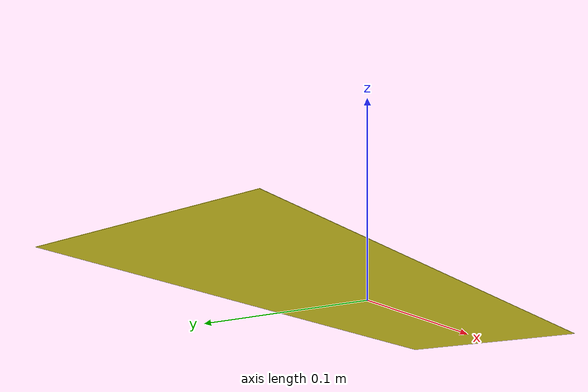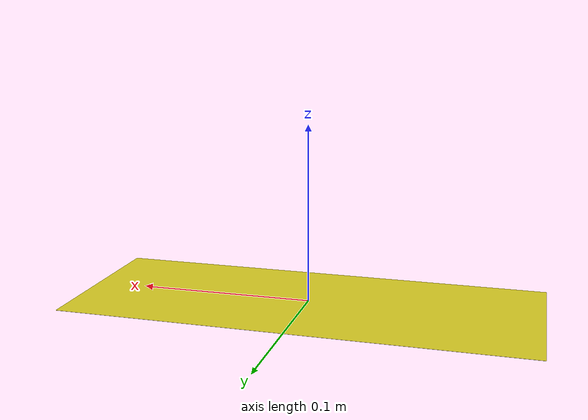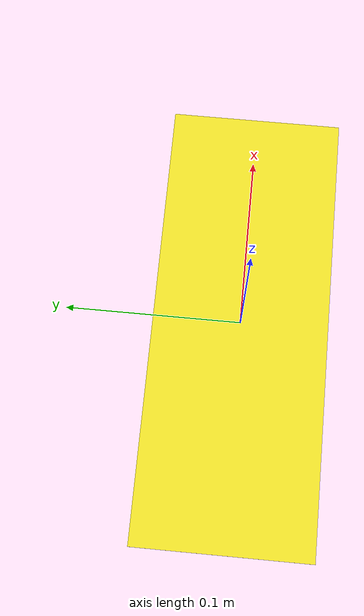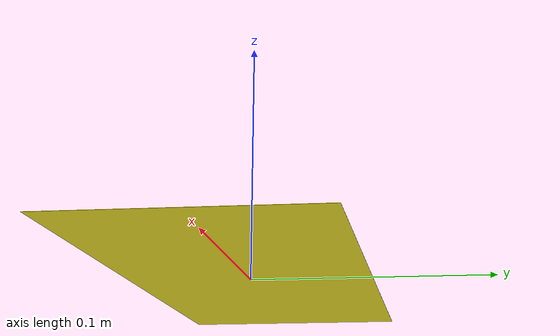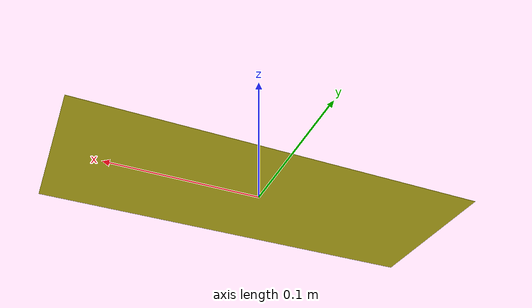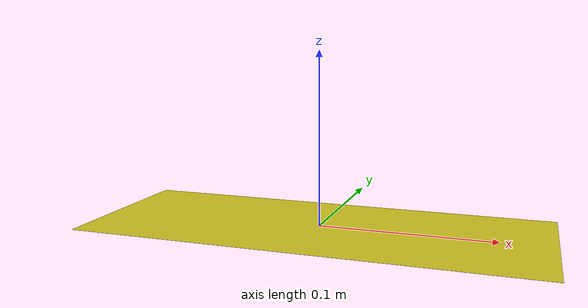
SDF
<?xml version='1.0'?>
<sdf version='1.6'>
  <model name='box_tag_yellow'>
  <link name="link1">
		<pose>0 0 0 0 0 0</pose>
		<inertial>
        <pose frame=''>0 0 0 0 0 0</pose>
        <mass>0</mass>
		</inertial>
		<visual name="visual">
	  <pose>0 0 0 0 0 0</pose>
		<geometry>
			<box>
				<size>0.26 0.1 0.0001</size>
			</box>
		</geometry>
		<material>
			<script>
				<uri>model://box_tag_yellow/materials/scripts</uri>
				<uri>model://box_tag_yellow/materials/textures</uri>
				<name>box_tag/yellow</name>
			</script>
		</material>
		</visual>
	</link>
  </model>
</sdf>
